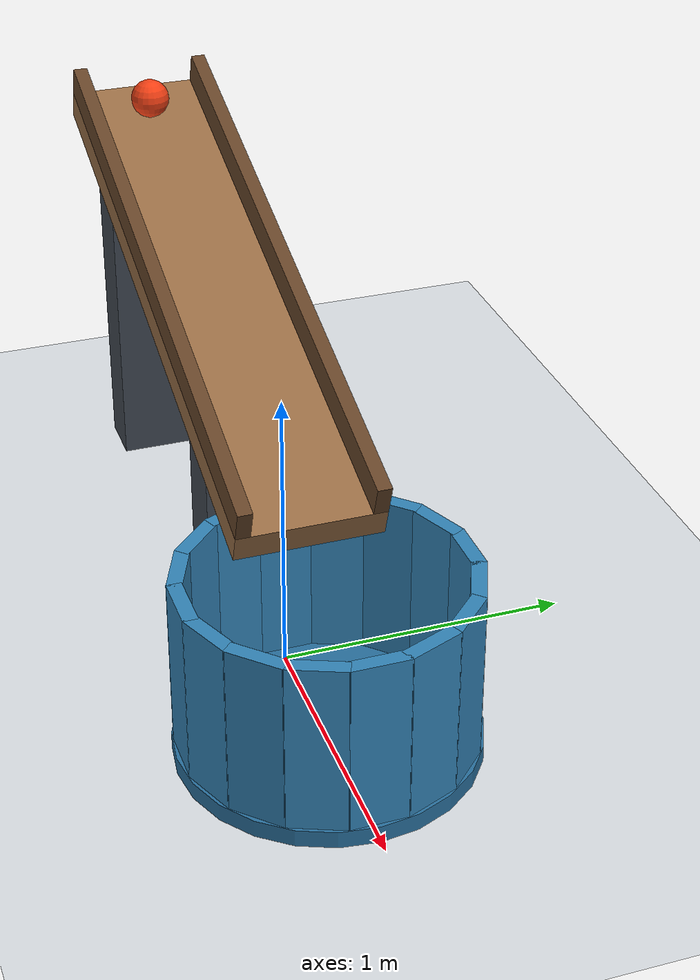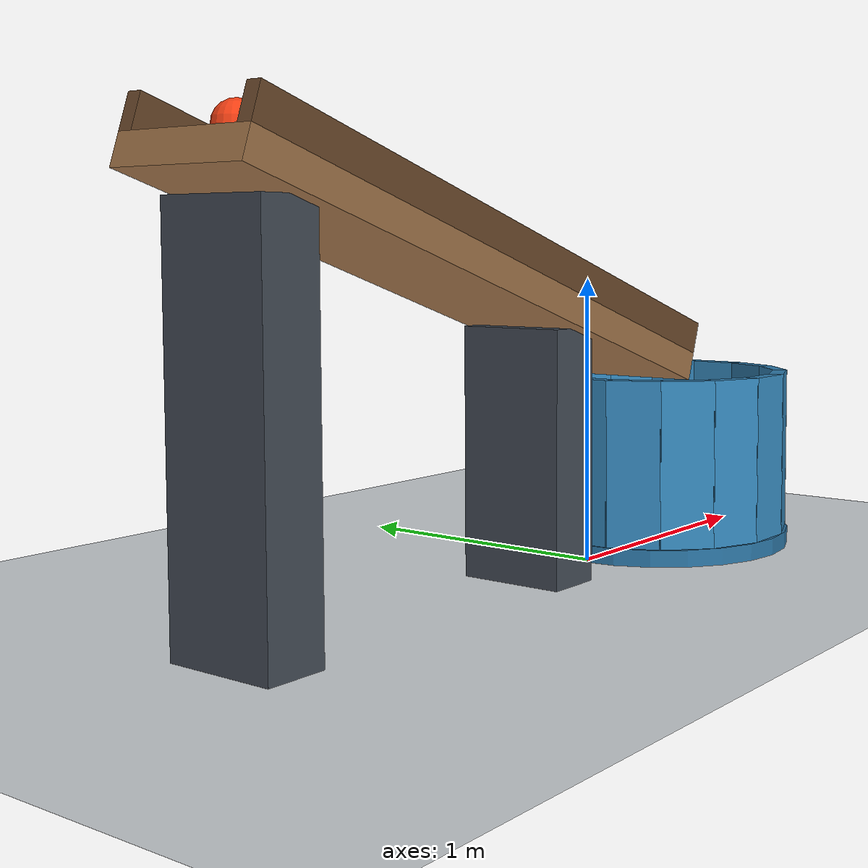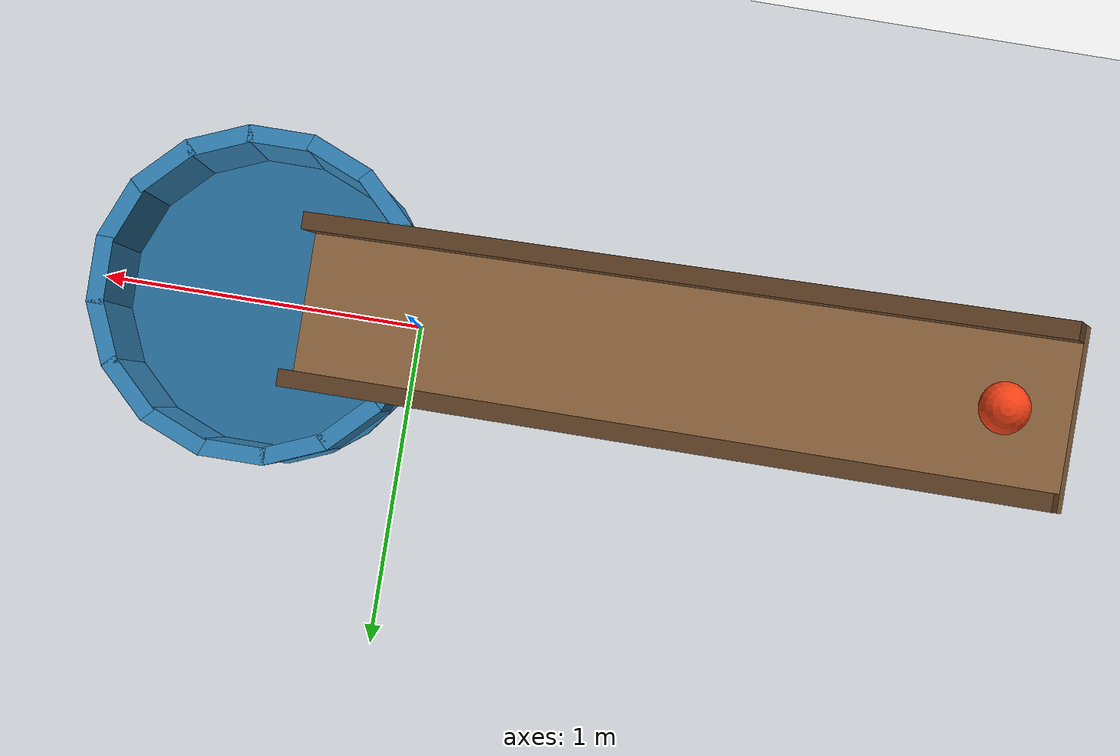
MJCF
<mujoco model="ball_ramp_cup">
  <compiler angle="degree"/>
  <option timestep="0.002" gravity="0 0 -9.81" integrator="implicitfast" solver="Newton" iterations="100" cone="elliptic"/>
  <size njmax="1000" nconmax="200"/>

  <visual>
    <headlight ambient="0.35 0.35 0.35" diffuse="0.65 0.65 0.65" specular="0.2 0.2 0.2"/>
    <rgba haze="0.85 0.90 0.95 1"/>
  </visual>

  <worldbody>
    <light name="overhead" pos="-1 -2 5" dir="0.2 0.3 -1" diffuse="0.8 0.8 0.8"/>
    <camera name="overview" pos="2.8 -4 3.4" xyaxes="0.78087 0.62470 0 -0.29940 0.37425 0.87790"/>

    <geom name="floor" type="plane" pos="0 0 0" size="4 3 0.1" rgba="0.86 0.88 0.90 1" condim="6" friction="0.8 0.01 0.005"/>

    <geom name="ramp_support_high" type="box" pos="-1.60 0 0.625" size="0.10 0.19 0.625" rgba="0.25 0.28 0.32 1"/>
    <geom name="ramp_support_low" type="box" pos="-0.35 0 0.425" size="0.10 0.19 0.425" rgba="0.25 0.28 0.32 1"/>

    <body name="ramp" pos="-0.75 0 1.025" euler="0 18 0">
      <geom name="ramp_surface" type="box" size="1.10 0.25 0.05" rgba="0.60 0.43 0.27 1" condim="6" friction="0.85 0.005 0.001" solref="0.015 1" solimp="0.95 0.99 0.001"/>
      <geom name="ramp_rail_left" type="box" pos="0 0.225 0.105" size="1.10 0.025 0.055" rgba="0.40 0.27 0.16 1" condim="6" friction="0.85 0.005 0.001" solref="0.015 1"/>
      <geom name="ramp_rail_right" type="box" pos="0 -0.225 0.105" size="1.10 0.025 0.055" rgba="0.40 0.27 0.16 1" condim="6" friction="0.85 0.005 0.001" solref="0.015 1"/>
    </body>

    <body name="cup" pos="0.46 0 0">
      <geom name="cup_base" type="cylinder" pos="0 0 0.03" size="0.50 0.03" rgba="0.16 0.44 0.62 1" condim="6" friction="1.0 0.02 0.02" solref="0.015 1" solimp="0.95 0.99 0.001"/>
      <geom name="cup_wall_00" type="box" pos="0.460000 0 0.355" euler="0 0 0" size="0.025 0.098 0.295" rgba="0.20 0.52 0.72 1" condim="6" friction="1.0 0.02 0.02" solref="0.015 1" solimp="0.95 0.99 0.001"/>
      <geom name="cup_wall_01" type="box" pos="0.424985 0.176034 0.355" euler="0 0 22.5" size="0.025 0.098 0.295" rgba="0.20 0.52 0.72 1" condim="6" friction="1.0 0.02 0.02" solref="0.015 1" solimp="0.95 0.99 0.001"/>
      <geom name="cup_wall_02" type="box" pos="0.325269 0.325269 0.355" euler="0 0 45" size="0.025 0.098 0.295" rgba="0.20 0.52 0.72 1" condim="6" friction="1.0 0.02 0.02" solref="0.015 1" solimp="0.95 0.99 0.001"/>
      <geom name="cup_wall_03" type="box" pos="0.176034 0.424985 0.355" euler="0 0 67.5" size="0.025 0.098 0.295" rgba="0.20 0.52 0.72 1" condim="6" friction="1.0 0.02 0.02" solref="0.015 1" solimp="0.95 0.99 0.001"/>
      <geom name="cup_wall_04" type="box" pos="0 0.460000 0.355" euler="0 0 90" size="0.025 0.098 0.295" rgba="0.20 0.52 0.72 1" condim="6" friction="1.0 0.02 0.02" solref="0.015 1" solimp="0.95 0.99 0.001"/>
      <geom name="cup_wall_05" type="box" pos="-0.176034 0.424985 0.355" euler="0 0 112.5" size="0.025 0.098 0.295" rgba="0.20 0.52 0.72 1" condim="6" friction="1.0 0.02 0.02" solref="0.015 1" solimp="0.95 0.99 0.001"/>
      <geom name="cup_wall_06" type="box" pos="-0.325269 0.325269 0.355" euler="0 0 135" size="0.025 0.098 0.295" rgba="0.20 0.52 0.72 1" condim="6" friction="1.0 0.02 0.02" solref="0.015 1" solimp="0.95 0.99 0.001"/>
      <geom name="cup_wall_07" type="box" pos="-0.424985 0.176034 0.355" euler="0 0 157.5" size="0.025 0.098 0.295" rgba="0.20 0.52 0.72 1" condim="6" friction="1.0 0.02 0.02" solref="0.015 1" solimp="0.95 0.99 0.001"/>
      <geom name="cup_wall_08" type="box" pos="-0.460000 0 0.355" euler="0 0 180" size="0.025 0.098 0.295" rgba="0.20 0.52 0.72 1" condim="6" friction="1.0 0.02 0.02" solref="0.015 1" solimp="0.95 0.99 0.001"/>
      <geom name="cup_wall_09" type="box" pos="-0.424985 -0.176034 0.355" euler="0 0 202.5" size="0.025 0.098 0.295" rgba="0.20 0.52 0.72 1" condim="6" friction="1.0 0.02 0.02" solref="0.015 1" solimp="0.95 0.99 0.001"/>
      <geom name="cup_wall_10" type="box" pos="-0.325269 -0.325269 0.355" euler="0 0 225" size="0.025 0.098 0.295" rgba="0.20 0.52 0.72 1" condim="6" friction="1.0 0.02 0.02" solref="0.015 1" solimp="0.95 0.99 0.001"/>
      <geom name="cup_wall_11" type="box" pos="-0.176034 -0.424985 0.355" euler="0 0 247.5" size="0.025 0.098 0.295" rgba="0.20 0.52 0.72 1" condim="6" friction="1.0 0.02 0.02" solref="0.015 1" solimp="0.95 0.99 0.001"/>
      <geom name="cup_wall_12" type="box" pos="0 -0.460000 0.355" euler="0 0 270" size="0.025 0.098 0.295" rgba="0.20 0.52 0.72 1" condim="6" friction="1.0 0.02 0.02" solref="0.015 1" solimp="0.95 0.99 0.001"/>
      <geom name="cup_wall_13" type="box" pos="0.176034 -0.424985 0.355" euler="0 0 292.5" size="0.025 0.098 0.295" rgba="0.20 0.52 0.72 1" condim="6" friction="1.0 0.02 0.02" solref="0.015 1" solimp="0.95 0.99 0.001"/>
      <geom name="cup_wall_14" type="box" pos="0.325269 -0.325269 0.355" euler="0 0 315" size="0.025 0.098 0.295" rgba="0.20 0.52 0.72 1" condim="6" friction="1.0 0.02 0.02" solref="0.015 1" solimp="0.95 0.99 0.001"/>
      <geom name="cup_wall_15" type="box" pos="0.424985 -0.176034 0.355" euler="0 0 337.5" size="0.025 0.098 0.295" rgba="0.20 0.52 0.72 1" condim="6" friction="1.0 0.02 0.02" solref="0.015 1" solimp="0.95 0.99 0.001"/>
    </body>

    <body name="ball" pos="-1.60 0 1.4285">
      <freejoint name="ball_free"/>
      <geom name="ball" type="sphere" size="0.07" mass="0.35" rgba="0.95 0.25 0.08 1" condim="6" friction="0.7 0.005 0.001" solref="0.015 1" solimp="0.95 0.99 0.001"/>
    </body>
  </worldbody>

  <keyframe>
    <key name="start" qpos="-1.60 0 1.4285 1 0 0 0" qvel="0 0 0 0 0 0"/>
  </keyframe>
</mujoco>
